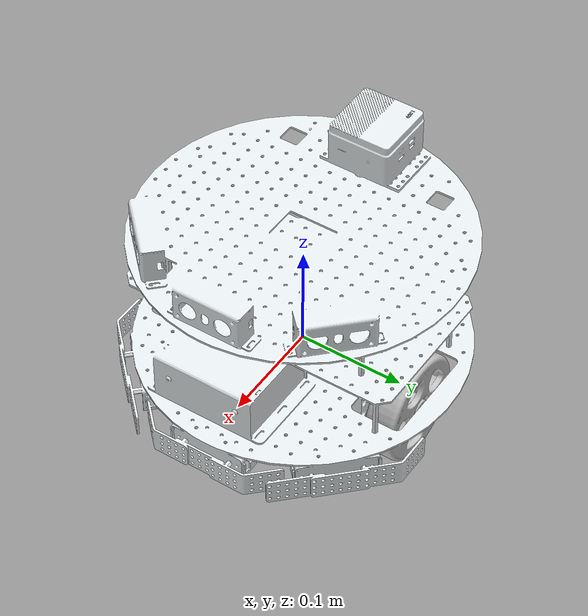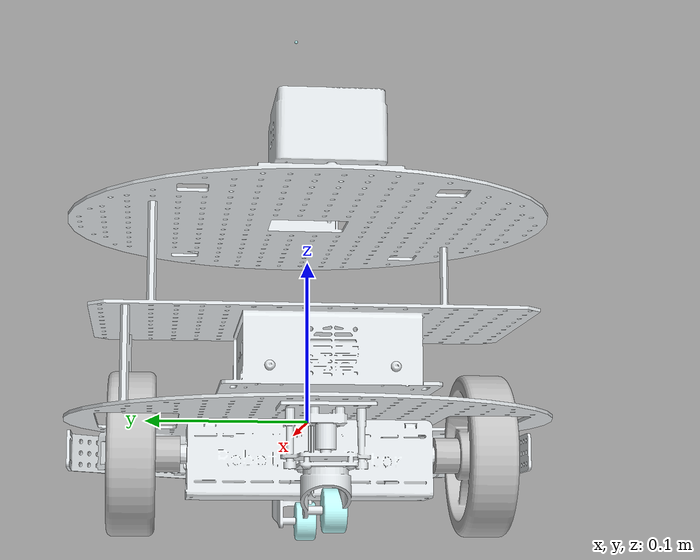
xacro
<?xml version="1.0"?>

<robot name="w2" xmlns:xacro="http://www.ros.org/wiki/xacro">

    <xacro:include filename="$(find upros_description)/xacro/w2_body.xacro" />
    <xacro:include filename="$(find upros_description)/xacro/diff_drive_controller.xacro" />
    <xacro:include filename="$(find upros_description)/xacro/lidar.xacro" />

    <xacro:w2_body />
	<xacro:lidar prefix="laser"/>
    <xacro:differential_drive_controller />

</robot>

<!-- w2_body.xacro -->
<robot xmlns:xacro="http://www.ros.org/wiki/xacro" name="w2_body">

    <xacro:macro name="w2_body">

        <link name="base_footprint">
        </link>

        <link name="base_link">
            <inertial>
                <origin xyz="-0.00183994912012901 0.000718384784481402 0.040896257051146"
                    rpy="0 0 0" />
                <mass value="2.11446326748896" />
                <inertia ixx="0.0172522550977486" ixy="0.000112962512291742"
                    ixz="0.00215471233797688"
                    iyy="0.0214703513066925" iyz="-3.60344762320202E-05" izz="0.0232865128652866" />
            </inertial>
            <visual>
                <origin xyz="0 0 0" rpy="0 0 0" />
                <geometry>
                    <mesh filename="package://upros_description/meshes/W2C/base_link.STL" />
                </geometry>
                <material name="">
                    <color rgba="0.898039215686275 0.917647058823529 0.929411764705882 1" />
                </material>
            </visual>
            <collision>
                <origin xyz="0 0 0" rpy="0 0 0" />
                <geometry>
                    <mesh filename="package://upros_description/meshes/W2C/base_link.STL" />
                </geometry>
            </collision>
        </link>
        <joint name="base_footprint_joint" type="fixed">
            <parent link="base_footprint" />
            <child link="base_link" />
        </joint>

        <link name="wheel_L_link">
            <inertial>
                <origin xyz="-3.78770996320736E-07 -0.013414250594195 4.81266645289274E-07"
                    rpy="0 0 0" />
                <mass value="0.337836569375269" />
                <inertia ixx="0.000278270805900081" ixy="1.29138084160578E-09"
                    ixz="1.09699819030228E-09" iyy="0.000496405737651082"
                    iyz="-1.64156177606385E-09"
                    izz="0.000278271727426874" />
            </inertial>
            <visual>
                <origin xyz="0 0 0" rpy="0 0 0" />
                <geometry>
                    <mesh filename="package://upros_description/meshes/W2C/wheel_L_link.STL" />
                </geometry>
                <material name="">
                    <color rgba="0.752941176470588 0.752941176470588 0.752941176470588 1" />
                </material>
            </visual>
            <collision>
                <origin xyz="0 0 0" rpy="0 0 0" />
                <geometry>
                    <mesh filename="package://upros_description/meshes/W2C/wheel_L_link.STL" />
                </geometry>
            </collision>
        </link>
        <joint name="wheel_L_joint" type="continuous">
            <origin xyz="0 0.1215 -0.02" rpy="0 0 0" />
            <parent link="base_link" />
            <child link="wheel_L_link" />
            <axis xyz="0 1 0" />
        </joint>

        <link name="wheel_R_link">
            <inertial>
                <origin xyz="-5.54575135339762E-07 0.013414250594195 2.59868179624395E-07"
                    rpy="0 0 0" />
                <mass value="0.337836569375269" />
                <inertia ixx="0.000278271195902002" ixy="-1.89148049635397E-09"
                    ixz="1.18772924132671E-09" iyy="0.000496405737651082" iyz="8.85827903470683E-10"
                    izz="0.000278271337424954" />
            </inertial>
            <visual>
                <origin xyz="0 0 0" rpy="0 0 0" />
                <geometry>
                    <mesh filename="package://upros_description/meshes/W2C/wheel_R_link.STL" />
                </geometry>
                <material name="">
                    <color rgba="0.752941176470588 0.752941176470588 0.752941176470588 1" />
                </material>
            </visual>
            <collision>
                <origin xyz="0 0 0" rpy="0 0 0" />
                <geometry>
                    <mesh filename="package://upros_description/meshes/W2C/wheel_R_link.STL" />
                </geometry>
            </collision>
        </link>
        <joint name="wheel_R_joint" type="continuous">
            <origin xyz="0 -0.1215 -0.02" rpy="0 0 0" />
            <parent link="base_link" />
            <child link="wheel_R_link" />
            <axis xyz="0 1 0" />
        </joint>

        <link name="front_Link">
            <inertial>
                <origin xyz="0 0 0" rpy="0 0 0" />
                <mass value="0.0063074121665526" />
                <inertia ixx="3.34755925557046E-07" ixy="-1.45392467961487E-22"
                    ixz="2.42001994301979E-24" iyy="4.93530086138426E-07" iyz="6.44209161389679E-25"
                    izz="3.34755925557046E-07" />
            </inertial>
            <visual>
                <origin xyz="0 0 0" rpy="0 0 0" />
                <geometry>
                    <mesh filename="package://upros_description/meshes/W2C/wheel_B_Link.STL" />
                </geometry>
                <material name="">
                    <color rgba="0.752941176470588 1 1 1" />
                </material>
            </visual>
            <collision>
                <origin xyz="0 0 0" rpy="0 0 0" />
                <geometry>
                    <mesh filename="package://upros_description/meshes/W2C/wheel_B_Link.STL" />
                </geometry>
            </collision>
        </link>
        <joint name="front_joint" type="continuous">
            <origin xyz="0.0859999999999999 0 -0.0575" rpy="0 0 0" />
            <parent link="base_link" />
            <child link="front_Link" />
            <axis xyz="1 1 1" />
        </joint>

        <link name="back_Link">
            <inertial>
                <origin xyz="0 0 0" rpy="0 0 0" />
                <mass value="0.0063074121665526" />
                <inertia ixx="3.34755925557046E-07" ixy="-1.45392467961487E-22"
                    ixz="2.42001994301979E-24" iyy="4.93530086138426E-07" iyz="6.4420916138968E-25"
                    izz="3.34755925557046E-07" />
            </inertial>
            <visual>
                <origin xyz="0 0 0" rpy="0 0 0" />
                <geometry>
                    <mesh filename="package://upros_description/meshes/W2C/wheel_A_Link.STL" />
                </geometry>
                <material name="">
                    <color rgba="0.752941176470588 1 1 1" />
                </material>
            </visual>
            <collision>
                <origin xyz="0 0 0" rpy="0 0 0" />
                <geometry>
                    <mesh filename="package://upros_description/meshes/W2C/wheel_A_Link.STL" />
                </geometry>
            </collision>
        </link>
        <joint name="back_joint" type="continuous">
            <origin xyz="-0.0859999999999998 0 -0.0575" rpy="0 0 0" />
            <parent link="base_link" />
            <child link="back_Link" />
            <axis xyz="1 1 1" />
        </joint>

    </xacro:macro>

</robot>

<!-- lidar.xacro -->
<robot xmlns:xacro="http://www.ros.org/wiki/xacro" name="lidar">

  <xacro:property name="laser_radius" value="0.001" />

  <xacro:macro name="lidar" params="prefix:=laser">

    <link name="${prefix}_link">
      <inertial>
        <origin xyz="0.000353208493461253 1.96691527473355E-07 -0.0201221997898385" rpy="0 0 0" />
        <mass value="0.0286837286205052" />
        <inertia ixx="1.36744565408129E-05" ixy="2.21134123619835E-07" ixz="4.73474118879471E-10"
          iyy="9.81480326700524E-06" iyz="7.43216749293828E-12" izz="1.6701788304723E-05" />
      </inertial>
      <visual>
        <origin xyz="0 0 0" rpy="0 0 0" />
        <geometry>
          <sphere radius="${laser_radius}" />
        </geometry>
        <material name="">
          <color rgba="0.752941176470588 1 1 1" />
        </material>
      </visual>
      <collision>
        <origin xyz="0 0 0" rpy="0 0 0" />
        <geometry>
          <sphere radius="${laser_radius}" />
        </geometry>
      </collision>
    </link>

    <joint name="laser_joint" type="fixed">
      <origin xyz="0.00103030119583913 0.00720522416129914 0.245" rpy="0 0 0" />
      <parent link="base_link" />
      <child link="${prefix}_link" />
      <axis xyz="0 0 0" />
    </joint>

    <gazebo reference="${prefix}_link">
      <sensor type="ray" name="lidar">
        <visualize>true</visualize>
        <update_rate>10</update_rate>
        <ray>
          <scan>
            <horizontal>
              <samples>1800</samples>
              <resolution>0.2</resolution>
              <min_angle>-3.14</min_angle>
              <max_angle>3.14</max_angle>
            </horizontal>
          </scan>
          <range>
            <min>0.10</min>
            <max>20.0</max>
            <resolution>1.0</resolution>
          </range>
          <noise>
            <type>gaussian</type>
            <mean>0.0</mean>
            <stddev>0.003</stddev>
          </noise>
        </ray>
        <!--plugin为ROS的通信接口-->
        <plugin name="gazebo_rplidar" filename="libgazebo_ros_laser.so">
          <topicName>/scan</topicName>
          <frameName>laser_link</frameName>
        </plugin>
      </sensor>
    </gazebo>

  </xacro:macro>
</robot>
